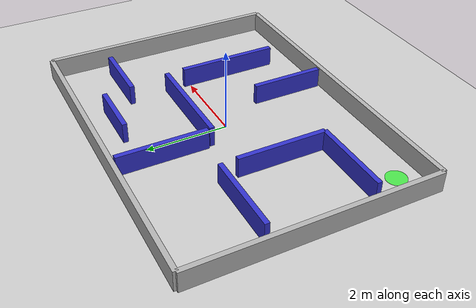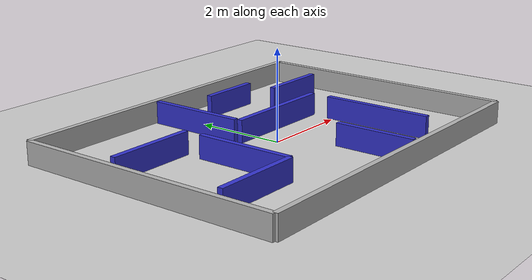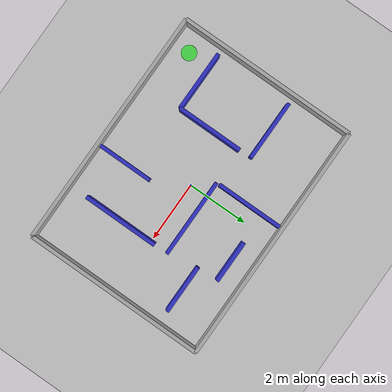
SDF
<?xml version="1.0" ?>
<sdf version="1.6">
  <world name="gopigo3_maze_world">

    <!-- Physics -->
    <physics name="default_physics" default="true" type="ode">
      <max_step_size>0.001</max_step_size>
      <real_time_factor>1.0</real_time_factor>
      <real_time_update_rate>1000</real_time_update_rate>
    </physics>

    <!-- Lighting -->
    <include>
      <uri>model://sun</uri>
    </include>

    <!-- Ground plane -->
    <include>
      <uri>model://ground_plane</uri>
    </include>

    <!-- Maze wall material notes:
         Each wall is a static box.
         pose: x y z roll pitch yaw
         size: length thickness height
    -->

    <!-- Outer boundary walls -->
    <model name="wall_outer_bottom">
      <static>true</static>
      <pose>0 -3 0.25 0 0 0</pose>
      <link name="link">
        <collision name="collision"><geometry><box><size>8 0.12 0.5</size></box></geometry></collision>
        <visual name="visual"><geometry><box><size>8 0.12 0.5</size></box></geometry><material><ambient>0.7 0.7 0.7 1</ambient><diffuse>0.7 0.7 0.7 1</diffuse></material></visual>
      </link>
    </model>

    <model name="wall_outer_top">
      <static>true</static>
      <pose>0 3 0.25 0 0 0</pose>
      <link name="link">
        <collision name="collision"><geometry><box><size>8 0.12 0.5</size></box></geometry></collision>
        <visual name="visual"><geometry><box><size>8 0.12 0.5</size></box></geometry><material><ambient>0.7 0.7 0.7 1</ambient><diffuse>0.7 0.7 0.7 1</diffuse></material></visual>
      </link>
    </model>

    <model name="wall_outer_left">
      <static>true</static>
      <pose>-4 0 0.25 0 0 0</pose>
      <link name="link">
        <collision name="collision"><geometry><box><size>0.12 6 0.5</size></box></geometry></collision>
        <visual name="visual"><geometry><box><size>0.12 6 0.5</size></box></geometry><material><ambient>0.7 0.7 0.7 1</ambient><diffuse>0.7 0.7 0.7 1</diffuse></material></visual>
      </link>
    </model>

    <model name="wall_outer_right">
      <static>true</static>
      <pose>4 0 0.25 0 0 0</pose>
      <link name="link">
        <collision name="collision"><geometry><box><size>0.12 6 0.5</size></box></geometry></collision>
        <visual name="visual"><geometry><box><size>0.12 6 0.5</size></box></geometry><material><ambient>0.7 0.7 0.7 1</ambient><diffuse>0.7 0.7 0.7 1</diffuse></material></visual>
      </link>
    </model>

    <!-- Internal maze walls -->
    <model name="wall_1">
      <static>true</static>
      <pose>-2.7 -1.6 0.25 0 0 0</pose>
      <link name="link">
        <collision name="collision"><geometry><box><size>2.0 0.12 0.5</size></box></geometry></collision>
        <visual name="visual"><geometry><box><size>2.0 0.12 0.5</size></box></geometry><material><ambient>0.2 0.2 0.8 1</ambient><diffuse>0.2 0.2 0.8 1</diffuse></material></visual>
      </link>
    </model>

    <model name="wall_2">
      <static>true</static>
      <pose>-1.7 -0.5 0.25 0 0 0</pose>
      <link name="link">
        <collision name="collision"><geometry><box><size>0.12 2.2 0.5</size></box></geometry></collision>
        <visual name="visual"><geometry><box><size>0.12 2.2 0.5</size></box></geometry><material><ambient>0.2 0.2 0.8 1</ambient><diffuse>0.2 0.2 0.8 1</diffuse></material></visual>
      </link>
    </model>

    <model name="wall_3">
      <static>true</static>
      <pose>-2.7 1.0 0.25 0 0 0</pose>
      <link name="link">
        <collision name="collision"><geometry><box><size>2.0 0.12 0.5</size></box></geometry></collision>
        <visual name="visual"><geometry><box><size>2.0 0.12 0.5</size></box></geometry><material><ambient>0.2 0.2 0.8 1</ambient><diffuse>0.2 0.2 0.8 1</diffuse></material></visual>
      </link>
    </model>

    <model name="wall_4">
      <static>true</static>
      <pose>-0.5 1.8 0.25 0 0 0</pose>
      <link name="link">
        <collision name="collision"><geometry><box><size>0.12 2.2 0.5</size></box></geometry></collision>
        <visual name="visual"><geometry><box><size>0.12 2.2 0.5</size></box></geometry><material><ambient>0.2 0.2 0.8 1</ambient><diffuse>0.2 0.2 0.8 1</diffuse></material></visual>
      </link>
    </model>

    <model name="wall_5">
      <static>true</static>
      <pose>0.8 0.6 0.25 0 0 0</pose>
      <link name="link">
        <collision name="collision"><geometry><box><size>2.6 0.12 0.5</size></box></geometry></collision>
        <visual name="visual"><geometry><box><size>2.6 0.12 0.5</size></box></geometry><material><ambient>0.2 0.2 0.8 1</ambient><diffuse>0.2 0.2 0.8 1</diffuse></material></visual>
      </link>
    </model>

    <model name="wall_6">
      <static>true</static>
      <pose>2.1 -1.1 0.25 0 0 0</pose>
      <link name="link">
        <collision name="collision"><geometry><box><size>0.12 2.5 0.5</size></box></geometry></collision>
        <visual name="visual"><geometry><box><size>0.12 2.5 0.5</size></box></geometry><material><ambient>0.2 0.2 0.8 1</ambient><diffuse>0.2 0.2 0.8 1</diffuse></material></visual>
      </link>
    </model>

    <model name="wall_7">
      <static>true</static>
      <pose>2.7 1.6 0.25 0 0 0</pose>
      <link name="link">
        <collision name="collision"><geometry><box><size>1.6 0.12 0.5</size></box></geometry></collision>
        <visual name="visual"><geometry><box><size>1.6 0.12 0.5</size></box></geometry><material><ambient>0.2 0.2 0.8 1</ambient><diffuse>0.2 0.2 0.8 1</diffuse></material></visual>
      </link>
    </model>

    <model name="wall_8">
      <static>true</static>
      <pose>0.6 -2.0 0.25 0 0 0</pose>
      <link name="link">
        <collision name="collision"><geometry><box><size>0.12 1.8 0.5</size></box></geometry></collision>
        <visual name="visual"><geometry><box><size>0.12 1.8 0.5</size></box></geometry><material><ambient>0.2 0.2 0.8 1</ambient><diffuse>0.2 0.2 0.8 1</diffuse></material></visual>
      </link>
    </model>

    <model name="wall_9">
      <static>true</static>
      <pose>1.2 2.3 0.25 0 0 0</pose>
      <link name="link">
        <collision name="collision"><geometry><box><size>1.4 0.12 0.5</size></box></geometry></collision>
        <visual name="visual"><geometry><box><size>1.4 0.12 0.5</size></box></geometry><material><ambient>0.2 0.2 0.8 1</ambient><diffuse>0.2 0.2 0.8 1</diffuse></material></visual>
      </link>
    </model>

    <!-- Optional start marker, not collidable -->
    <model name="start_area_marker">
      <static>true</static>
      <pose>-3.3 -2.4 0.01 0 0 0</pose>
      <link name="link">
        <visual name="visual">
          <geometry><cylinder><radius>0.25</radius><length>0.01</length></cylinder></geometry>
          <material><ambient>0 1 0 0.6</ambient><diffuse>0 1 0 0.6</diffuse></material>
        </visual>
      </link>
    </model>

  </world>
</sdf>
